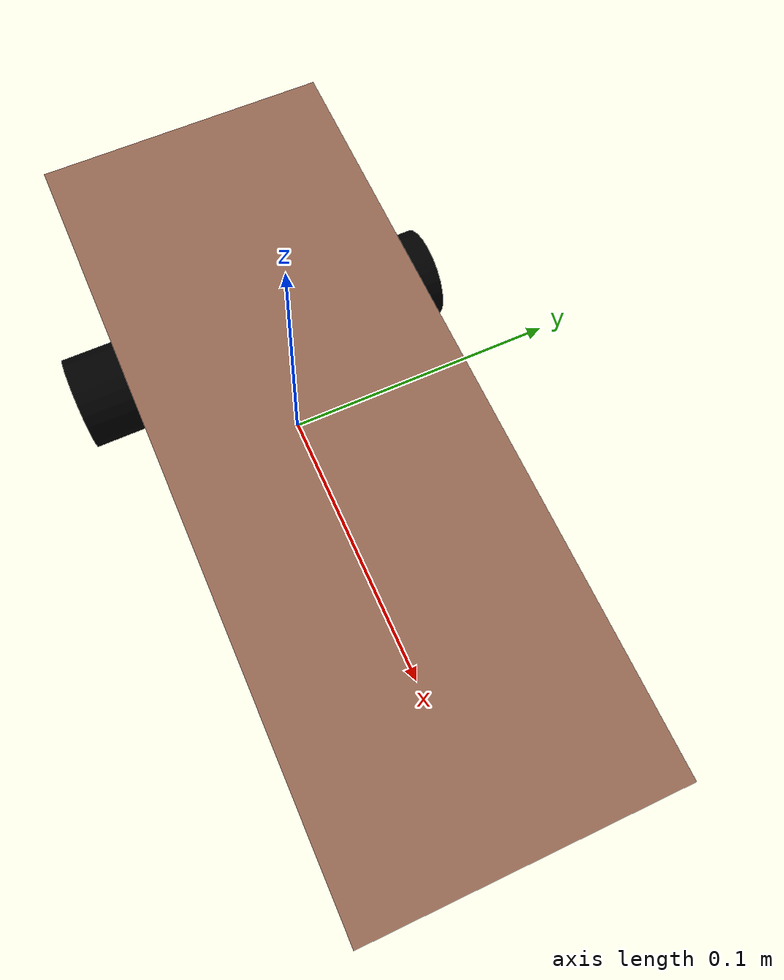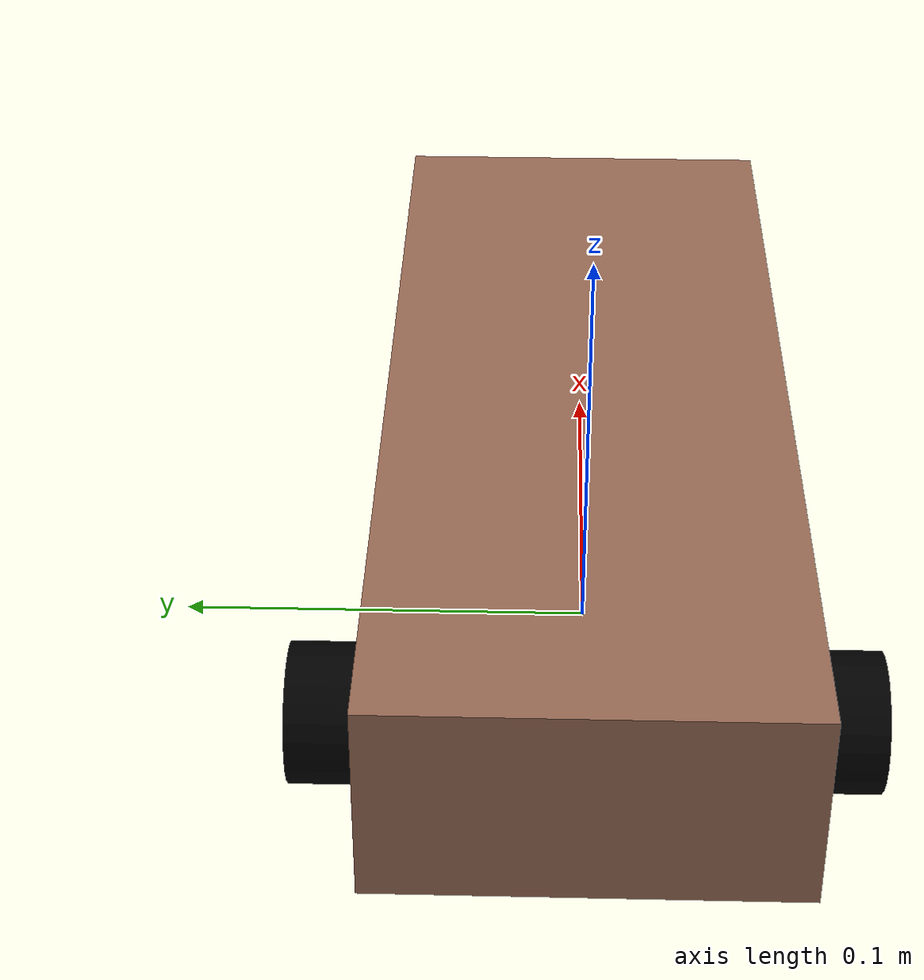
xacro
<?xml version="1.0"?>
<robot xmlns:xacro="http://www.ros.org/wiki/xacro">

    <xacro:include filename="inertial_macros.xacro" />

    <material name="white">
        <color rgba="1 1 1 1"/>
    </material>

    <material name="orange">
        <color rgba="1 0.3 0.1 1"/>
    </material>

    <material name="blue">
        <color rgba="0.2 0.2 1 1"/>
    </material>

    <material name="black">
        <color rgba="0 0 0 1"/>
    </material>

    <material name="red">
        <color rgba="1 0 0 1"/>
    </material>

    <material name="brownish" >
        <color rgba="0.611764705882353 0.42745098039215684 0.3411764705882353 1.0" />
    </material>

    <!--BASE  LINK-->
    <link name="base_link">
    </link>

    <!-- BASE_FOOTPRINT LINK -->

    <joint name="base_footprint_joint" type="fixed">
        <parent link="base_link"/>
        <child link="base_footprint"/>
        <origin xyz="0 0 0" rpy="0 0 0"/>
    </joint>

    <link name="base_footprint">
    </link>

    <!--CHASIS LINK-->
    <joint name="chassis_joint" type="fixed">
        <parent link="base_link"/>
        <child link="chassis"/>
        <origin xyz="-0.1 0 0"/>
    </joint>

    <link name="chassis">
        <visual>
            <origin xyz="0.129 0 0.025" rpy="0 0 0"/>
            <geometry>
                <box size="0.258 0.10 0.05"/>
            </geometry>
            <material name="brownish"/>
        </visual>
        <collision>
            <origin xyz="0.129 0 0.025" rpy="0 0 0"/>
            <geometry>
                <box size="0.258 0.10 0.016"/>
            </geometry>
        </collision>
        <xacro:inertial_box mass="0.5" x="0.258" y="0.10" z="0.05">
            <origin xyz="0.129 0 0.025" rpy="0 0 0"/>
        </xacro:inertial_box>
    </link>

    <gazebo reference="chassis">
        <material>Gazebo/DarkYellow</material>
    </gazebo>

    <!--LEFT WHEEL LINK-->
    <joint name="left_wheel_joint" type="continuous">
        <parent link="base_link"/>
        <child link="left_wheel"/>
        <origin xyz="-0.04 0.06 0" rpy="-${pi/2} 0 0"/>
        <axis xyz="0 0 1"/>
    </joint>

    <link name="left_wheel">
        <visual>
            <geometry>
                <cylinder radius="0.017" length="0.02" />
            </geometry>
            <material name="black"/>
        </visual>
        <collision>
            <geometry>
                <cylinder radius="0.017" length="0.001" />
            </geometry>
        </collision>
        <xacro:inertial_cylinder mass="0.1" length="0.02" radius="0.017">
        <origin xyz="0 0 0" rpy="0 0 0"/>
    </xacro:inertial_cylinder>
    </link>

    <gazebo reference="left_wheel">
        <material>Gazebo/FlatBlack</material>
    </gazebo>

    <!--RIGHT WHEEL LINK-->
    <joint name="right_wheel_joint" type="continuous">
        <parent link="base_link"/>
        <child link="right_wheel"/>
        <origin xyz="-0.04 -0.06 0" rpy="${pi/2} 0 0"/>
        <axis xyz="0 0 -1"/>
    </joint>

    <link name="right_wheel">
        <visual>
            <geometry>
                <cylinder radius="0.017" length="0.02" />
            </geometry>
            <material name="black"/>
        </visual>
        <collision>
            <geometry>
                <cylinder radius="0.017" length="0.001" />
            </geometry>
        </collision>
        <xacro:inertial_cylinder mass="0.1" length="0.02" radius="0.017">
        <origin xyz="0 0 0" rpy="0 0 0"/>
    </xacro:inertial_cylinder>
    </link>

    <gazebo reference="right_wheel">
        <material>Gazebo/FlatBlack</material>
    </gazebo>

    <!--CASTER WHEEL LINK-->
    <joint name="caster_wheel_joint" type="fixed">
        <parent link="chassis"/>
        <child link="caster_wheel"/>
        <origin xyz="0.225 0 0"/>
    </joint>

    <link name="caster_wheel">
        <visual>
            <geometry>
                <sphere radius="0.017" />
            </geometry>
            <material name="black"/>
        </visual>
        <collision>
            <geometry>
                <sphere radius="0.017" />
            </geometry>
        </collision>
        <xacro:inertial_sphere mass="0.1" radius="0.017">
        <origin xyz="0 0 0" rpy="0 0 0"/>
    </xacro:inertial_sphere>
    </link>

    <gazebo reference="caster_wheel">
        <material>Gazebo/Black</material>
        <mu1 value="0.001"/>
        <mu2 value="0.001"/>
    </gazebo>

</robot>
